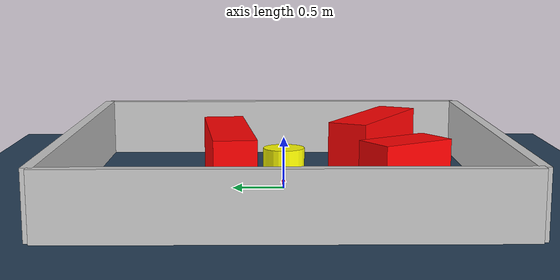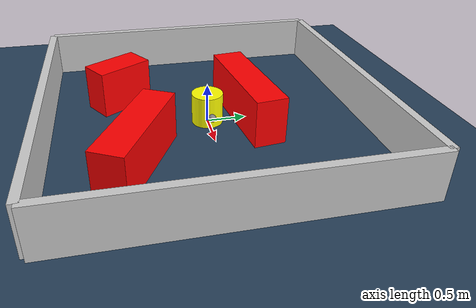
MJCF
<?xml version="1.0" ?>
<mujoco model="generated_environment">
  <option timestep="0.01" integrator="RK4" cone="elliptic"/>
  <default>
    <geom density="1"/>
  </default>
  <asset>
    <texture builtin="gradient" height="3072" rgb1="0.3 0.5 0.7" rgb2="0 0 0" type="skybox" width="512"/>
    <texture builtin="checker" height="300" mark="edge" markrgb="0.8 0.8 0.8" name="groundplane" rgb1="0.2 0.3 0.4" rgb2="0.1 0.2 0.3" type="2d" width="300"/>
    <material name="groundplane" reflectance="0.2" texrepeat="5 5" texture="groundplane" texuniform="true"/>
    <material name="robot" rgba="0.0 1.0 0.0 1"/>
  </asset>
  <worldbody>
    <light dir="0 0 -1" directional="true" pos="0 0 1.5"/>
    <geom condim="4" friction="1.0 0.005 0.001" material="groundplane" name="floor" size="0 0 0.05" type="plane"/>
    <body name="walls">
      <geom name="wall_1" condim="4" pos="-2.0 0.0 0.3" rgba="0.800000011920929 0.800000011920929 0.800000011920929 1.0" size="0.05 2.0 0.3" type="box"/>
      <geom name="wall_2" condim="4" pos="2.0 0.0 0.3" rgba="0.800000011920929 0.800000011920929 0.800000011920929 1.0" size="0.05 2.0 0.3" type="box"/>
      <geom name="wall_3" condim="4" pos="0.0 -2.0 0.3" rgba="0.800000011920929 0.800000011920929 0.800000011920929 1.0" size="2.0 0.05 0.3" type="box"/>
      <geom name="wall_4" condim="4" pos="0.0 2.0 0.3" rgba="0.800000011920929 0.800000011920929 0.800000011920929 1.0" size="2.0 0.05 0.3" type="box"/>
    </body>
    <body name="robot">
      <joint name="joint_x" type="slide" pos="0 0 0" axis="1 0 0"/>
      <joint name="joint_y" type="slide" pos="0 0 0" axis="0 1 0"/>
      <geom name="robot" type="sphere" pos="0.3 0.0 0.2" size="0.05" mass="5." friction="1.0 0.005 0.0001" condim="4" rgba="0.5 0.5 0.5 1.0"/>
      <site name="sensor_ball"/>
    </body>
    <body name="obstacle_movable_1">
      <geom name="obstacle_movable_1" condim="4" pos="0.0 0.0 0.2" euler="0 0 0.0" friction="1.0 0.005 0.001" rgba="1.0 1.0 0.0 1.0" size="0.2 0.2 0.0" type="cylinder" mass="0.1"/>
      <joint type="free"/>
    </body>
    <body name="obstacle_2_static">
      <geom name="obstacle_2_static" condim="4" pos="-0.023387763742497958 0.5297428553429964 0.3" euler="0 0 186.75348395582014" friction="1.0 0.005 0.001" rgba="1 0 0 1" size="0.7546612693044668 0.2 0.3" type="box"/>
    </body>
    <body name="obstacle_3_static">
      <geom name="obstacle_3_static" condim="4" pos="-0.7191278613449894 -1.08394575172575 0.3" euler="0 0 302.4243434646716" friction="1.0 0.005 0.001" rgba="1 0 0 1" size="0.3696515869055624 0.2 0.3" type="box"/>
    </body>
    <body name="obstacle_4_static">
      <geom name="obstacle_4_static" condim="4" pos="0.8271863705591171 -0.9494424351027598 0.3" euler="0 0 152.26887081311648" friction="1.0 0.005 0.001" rgba="1 0 0 1" size="0.6933639347610969 0.2 0.3" type="box"/>
    </body>
  </worldbody>
  <actuator>
    <motor name="actuator_x" joint="joint_x" gear="1" ctrlrange="-1 1"/>
    <motor name="actuator_y" joint="joint_y" gear="1" ctrlrange="-1 1"/>
  </actuator>
</mujoco>
